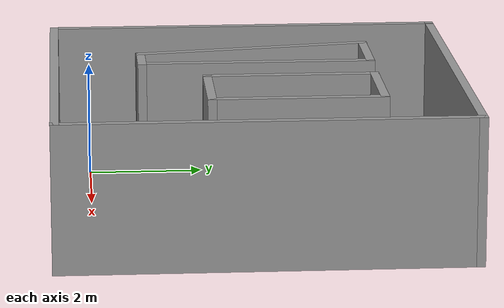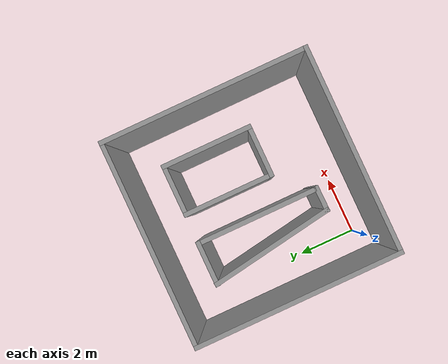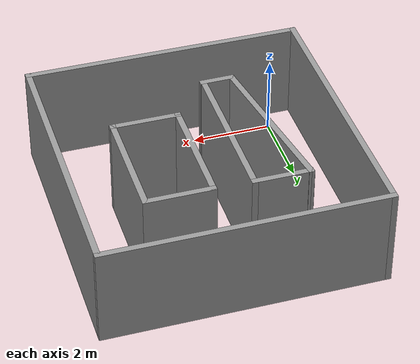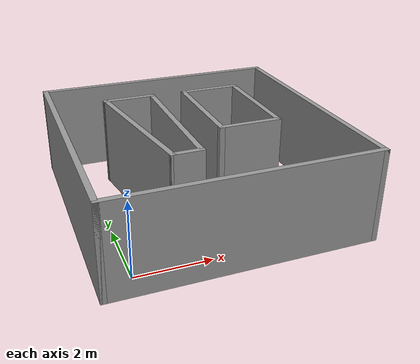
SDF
<?xml version='1.0'?>
<sdf version='1.7'>
  <model name='like_maze_map6'>
    <pose>2.61928 2.81171 0 0 -0 0</pose>
    <link name='Wall_1'>
      <collision name='Wall_1_Collision'>
        <geometry>
          <box>
            <size>7 0.15 2.5</size>
          </box>
        </geometry>
        <pose>0 0 1.25 0 -0 0</pose>
      </collision>
      <visual name='Wall_1_Visual'>
        <pose>0 0 1.25 0 -0 0</pose>
        <geometry>
          <box>
            <size>7 0.15 2.5</size>
          </box>
        </geometry>
        <material>
          <script>
            <uri>file://media/materials/scripts/gazebo.material</uri>
            <name>Gazebo/Grey</name>
          </script>
          <ambient>1 1 1 1</ambient>
        </material>
        <meta>
          <layer>0</layer>
        </meta>
      </visual>
      <pose>-3.425 0 0 0 -0 -1.5708</pose>
    </link>
    <link name='Wall_20'>
      <collision name='Wall_20_Collision'>
        <geometry>
          <box>
            <size>4.16287 0.15 2.5</size>
          </box>
        </geometry>
        <pose>0 0 1.25 0 -0 0</pose>
      </collision>
      <visual name='Wall_20_Visual'>
        <pose>0 0 1.25 0 -0 0</pose>
        <geometry>
          <box>
            <size>4.16287 0.15 2.5</size>
          </box>
        </geometry>
        <material>
          <script>
            <uri>file://media/materials/scripts/gazebo.material</uri>
            <name>Gazebo/Grey</name>
          </script>
          <ambient>1 1 1 1</ambient>
        </material>
        <meta>
          <layer>0</layer>
        </meta>
      </visual>
      <pose>-1.62447 0.059184 0 0 -0 -1.41304</pose>
    </link>
    <link name='Wall_22'>
      <collision name='Wall_22_Collision'>
        <geometry>
          <box>
            <size>1.5 0.15 2.5</size>
          </box>
        </geometry>
        <pose>0 0 1.25 0 -0 0</pose>
      </collision>
      <visual name='Wall_22_Visual'>
        <pose>0 0 1.25 0 -0 0</pose>
        <geometry>
          <box>
            <size>1.5 0.15 2.5</size>
          </box>
        </geometry>
        <material>
          <script>
            <uri>file://media/materials/scripts/gazebo.material</uri>
            <name>Gazebo/Grey</name>
          </script>
          <ambient>1 1 1 1</ambient>
        </material>
        <meta>
          <layer>0</layer>
        </meta>
      </visual>
      <pose>-1.26468 2.0407 0 0 -0 0</pose>
    </link>
    <link name='Wall_27'>
      <collision name='Wall_27_Collision'>
        <geometry>
          <box>
            <size>4 0.15 2.5</size>
          </box>
        </geometry>
        <pose>0 0 1.25 0 -0 0</pose>
      </collision>
      <visual name='Wall_27_Visual'>
        <pose>0 0 1.25 0 -0 0</pose>
        <geometry>
          <box>
            <size>4 0.15 2.5</size>
          </box>
        </geometry>
        <material>
          <script>
            <uri>file://media/materials/scripts/gazebo.material</uri>
            <name>Gazebo/Grey</name>
          </script>
          <ambient>1 1 1 1</ambient>
        </material>
        <meta>
          <layer>0</layer>
        </meta>
      </visual>
      <pose>-0.589683 0.115705 0 0 -0 -1.5708</pose>
    </link>
    <link name='Wall_29'>
      <collision name='Wall_29_Collision'>
        <geometry>
          <box>
            <size>0.884834 0.15 2.5</size>
          </box>
        </geometry>
        <pose>0 0 1.25 0 -0 0</pose>
      </collision>
      <visual name='Wall_29_Visual'>
        <pose>0 0 1.25 0 -0 0</pose>
        <geometry>
          <box>
            <size>0.884834 0.15 2.5</size>
          </box>
        </geometry>
        <material>
          <script>
            <uri>file://media/materials/scripts/gazebo.material</uri>
            <name>Gazebo/Grey</name>
          </script>
          <ambient>1 1 1 1</ambient>
        </material>
        <meta>
          <layer>0</layer>
        </meta>
      </visual>
      <pose>-0.941857 -1.91799 0 0 -0 0.011834</pose>
    </link>
    <link name='Wall_3'>
      <collision name='Wall_3_Collision'>
        <geometry>
          <box>
            <size>7 0.15 2.5</size>
          </box>
        </geometry>
        <pose>0 0 1.25 0 -0 0</pose>
      </collision>
      <visual name='Wall_3_Visual'>
        <pose>0 0 1.25 0 -0 0</pose>
        <geometry>
          <box>
            <size>7 0.15 2.5</size>
          </box>
        </geometry>
        <material>
          <script>
            <uri>file://media/materials/scripts/gazebo.material</uri>
            <name>Gazebo/Grey</name>
          </script>
          <ambient>1 1 1 1</ambient>
        </material>
        <meta>
          <layer>0</layer>
        </meta>
      </visual>
      <pose>0 -3.425 0 0 -0 0</pose>
    </link>
    <link name='Wall_39'>
      <collision name='Wall_39_Collision'>
        <geometry>
          <box>
            <size>3 0.15 2.5</size>
          </box>
        </geometry>
        <pose>0 0 1.25 0 -0 0</pose>
      </collision>
      <visual name='Wall_39_Visual'>
        <pose>0 0 1.25 0 -0 0</pose>
        <geometry>
          <box>
            <size>3 0.15 2.5</size>
          </box>
        </geometry>
        <material>
          <script>
            <uri>file://media/materials/scripts/gazebo.material</uri>
            <name>Gazebo/Grey</name>
          </script>
          <ambient>1 1 1 1</ambient>
        </material>
        <meta>
          <layer>0</layer>
        </meta>
      </visual>
      <pose>1.97119 0.583097 0 0 -0 -1.5708</pose>
    </link>
    <link name='Wall_4'>
      <collision name='Wall_4_Collision'>
        <geometry>
          <box>
            <size>7 0.15 2.5</size>
          </box>
        </geometry>
        <pose>0 0 1.25 0 -0 0</pose>
      </collision>
      <visual name='Wall_4_Visual'>
        <pose>0 0 1.25 0 -0 0</pose>
        <geometry>
          <box>
            <size>7 0.15 2.5</size>
          </box>
        </geometry>
        <material>
          <script>
            <uri>file://media/materials/scripts/gazebo.material</uri>
            <name>Gazebo/Grey</name>
          </script>
          <ambient>1 1 1 1</ambient>
        </material>
        <meta>
          <layer>0</layer>
        </meta>
      </visual>
      <pose>3.425 0 0 0 -0 1.5708</pose>
    </link>
    <link name='Wall_43'>
      <collision name='Wall_43_Collision'>
        <geometry>
          <box>
            <size>1.75 0.15 2.5</size>
          </box>
        </geometry>
        <pose>0 0 1.25 0 -0 0</pose>
      </collision>
      <visual name='Wall_43_Visual'>
        <pose>0 0 1.25 0 -0 0</pose>
        <geometry>
          <box>
            <size>1.75 0.15 2.5</size>
          </box>
        </geometry>
        <material>
          <script>
            <uri>file://media/materials/scripts/gazebo.material</uri>
            <name>Gazebo/Grey</name>
          </script>
          <ambient>1 1 1 1</ambient>
        </material>
        <meta>
          <layer>0</layer>
        </meta>
      </visual>
      <pose>1.17119 -0.841903 0 0 -0 3.14159</pose>
    </link>
    <link name='Wall_45'>
      <collision name='Wall_45_Collision'>
        <geometry>
          <box>
            <size>3 0.15 2.5</size>
          </box>
        </geometry>
        <pose>0 0 1.25 0 -0 0</pose>
      </collision>
      <visual name='Wall_45_Visual'>
        <pose>0 0 1.25 0 -0 0</pose>
        <geometry>
          <box>
            <size>3 0.15 2.5</size>
          </box>
        </geometry>
        <material>
          <script>
            <uri>file://media/materials/scripts/gazebo.material</uri>
            <name>Gazebo/Grey</name>
          </script>
          <ambient>1 1 1 1</ambient>
        </material>
        <meta>
          <layer>0</layer>
        </meta>
      </visual>
      <pose>0.371186 0.583097 0 0 -0 1.5708</pose>
    </link>
    <link name='Wall_46'>
      <collision name='Wall_46_Collision'>
        <geometry>
          <box>
            <size>1.75 0.15 2.5</size>
          </box>
        </geometry>
        <pose>0 0 1.25 0 -0 0</pose>
      </collision>
      <visual name='Wall_46_Visual'>
        <pose>0 0 1.25 0 -0 0</pose>
        <geometry>
          <box>
            <size>1.75 0.15 2.5</size>
          </box>
        </geometry>
        <material>
          <script>
            <uri>file://media/materials/scripts/gazebo.material</uri>
            <name>Gazebo/Grey</name>
          </script>
          <ambient>1 1 1 1</ambient>
        </material>
        <meta>
          <layer>0</layer>
        </meta>
      </visual>
      <pose>1.17119 2.0081 0 0 -0 0</pose>
    </link>
    <link name='Wall_5'>
      <collision name='Wall_5_Collision'>
        <geometry>
          <box>
            <size>7 0.15 2.5</size>
          </box>
        </geometry>
        <pose>0 0 1.25 0 -0 0</pose>
      </collision>
      <visual name='Wall_5_Visual'>
        <pose>0 0 1.25 0 -0 0</pose>
        <geometry>
          <box>
            <size>7 0.15 2.5</size>
          </box>
        </geometry>
        <material>
          <script>
            <uri>file://media/materials/scripts/gazebo.material</uri>
            <name>Gazebo/Grey</name>
          </script>
          <ambient>1 1 1 1</ambient>
        </material>
        <meta>
          <layer>0</layer>
        </meta>
      </visual>
      <pose>0 3.425 0 0 -0 -3.14159</pose>
    </link>
    <static>1</static>
  </model>
</sdf>
